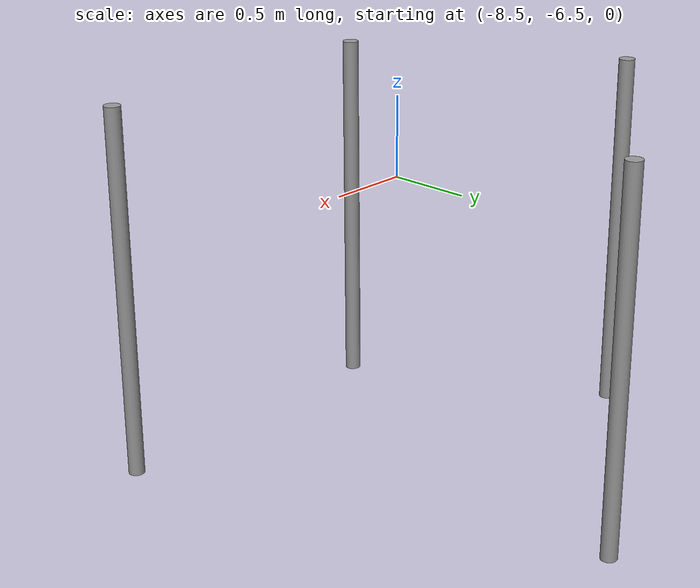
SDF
<sdf version="1.7">
 <model name="Complex1">
  <link name="link_0_clone_clone_21">
   <inertial>
    <mass>0.0136479</mass>
    <inertia>
     <ixx>0.00424334</ixx>
     <ixy>0</ixy>
     <ixz>0</ixz>
     <iyy>0.00424334</iyy>
     <iyz>0</iyz>
     <izz>1.17941e-05</izz>
    </inertia>
   </inertial>
   <pose>-8.58463 -4.98352 0 0 -0 0</pose>
   <visual name="visual">
    <geometry><cylinder><radius>0.0415732</radius><length>1.93023</length></cylinder></geometry>
    <material>
     <lighting>1</lighting>
     <script><uri>file://media/materials/scripts/gazebo.material</uri><name>Gazebo/Grey</name></script>
     <shader type="pixel"/>
    </material>
   </visual>
   <collision name="collision">
    <geometry><cylinder><radius>0.041573</radius><length>1.93023</length></cylinder></geometry>
    <surface>
     <friction>
      <ode><mu>1</mu><mu2>1</mu2><fdir1>0 0 0</fdir1><slip1>0</slip1><slip2>0</slip2></ode>
      <torsional>
       <coefficient>1</coefficient>
       <patch_radius>0</patch_radius>
       <surface_radius>0</surface_radius>
       <use_patch_radius>1</use_patch_radius>
       <ode><slip>0</slip></ode>
      </torsional>
     </friction>
     <bounce><restitution_coefficient>0</restitution_coefficient><threshold>1e+06</threshold></bounce>
     <contact>
      <collide_without_contact>0</collide_without_contact>
      <collide_without_contact_bitmask>1</collide_without_contact_bitmask>
      <collide_bitmask>1</collide_bitmask>
      <ode>
       <soft_cfm>0</soft_cfm>
       <soft_erp>0.2</soft_erp>
       <kp>1e+13</kp>
       <kd>1</kd>
       <max_vel>0.01</max_vel>
       <min_depth>0</min_depth>
      </ode>
      <bullet>
       <split_impulse>1</split_impulse>
       <split_impulse_penetration_threshold>-0.01</split_impulse_penetration_threshold>
       <soft_cfm>0</soft_cfm>
       <soft_erp>0.2</soft_erp>
       <kp>1e+13</kp>
       <kd>1</kd>
      </bullet>
     </contact>
    </surface>
   </collision>
  </link>
  <link name="link_0_clone_clone_22">
   <inertial>
    <mass>0.0136479</mass>
    <inertia>
     <ixx>0.00424334</ixx>
     <ixy>0</ixy>
     <ixz>0</ixz>
     <iyy>0.00424334</iyy>
     <iyz>0</iyz>
     <izz>1.17941e-05</izz>
    </inertia>
   </inertial>
   <pose>-6.23981 -6.23593 0 0 -0 0</pose>
   <visual name="visual">
    <geometry><cylinder><radius>0.0415732</radius><length>1.93023</length></cylinder></geometry>
    <material>
     <lighting>1</lighting>
     <script><uri>file://media/materials/scripts/gazebo.material</uri><name>Gazebo/Grey</name></script>
     <shader type="pixel"/>
    </material>
   </visual>
   <collision name="collision">
    <geometry><cylinder><radius>0.041573</radius><length>1.93023</length></cylinder></geometry>
    <surface>
     <friction>
      <ode><mu>1</mu><mu2>1</mu2><fdir1>0 0 0</fdir1><slip1>0</slip1><slip2>0</slip2></ode>
      <torsional>
       <coefficient>1</coefficient>
       <patch_radius>0</patch_radius>
       <surface_radius>0</surface_radius>
       <use_patch_radius>1</use_patch_radius>
       <ode><slip>0</slip></ode>
      </torsional>
     </friction>
     <bounce><restitution_coefficient>0</restitution_coefficient><threshold>1e+06</threshold></bounce>
     <contact>
      <collide_without_contact>0</collide_without_contact>
      <collide_without_contact_bitmask>1</collide_without_contact_bitmask>
      <collide_bitmask>1</collide_bitmask>
      <ode>
       <soft_cfm>0</soft_cfm>
       <soft_erp>0.2</soft_erp>
       <kp>1e+13</kp>
       <kd>1</kd>
       <max_vel>0.01</max_vel>
       <min_depth>0</min_depth>
      </ode>
      <bullet>
       <split_impulse>1</split_impulse>
       <split_impulse_penetration_threshold>-0.01</split_impulse_penetration_threshold>
       <soft_cfm>0</soft_cfm>
       <soft_erp>0.2</soft_erp>
       <kp>1e+13</kp>
       <kd>1</kd>
      </bullet>
     </contact>
    </surface>
   </collision>
  </link>
  <link name="link_0_clone_clone_24">
   <inertial>
    <mass>0.0136479</mass>
    <inertia>
     <ixx>0.00424334</ixx>
     <ixy>0</ixy>
     <ixz>0</ixz>
     <iyy>0.00424334</iyy>
     <iyz>0</iyz>
     <izz>1.17941e-05</izz>
    </inertia>
   </inertial>
   <pose>-7.8938 -6.29381 0 0 -0 0</pose>
   <visual name="visual">
    <geometry><cylinder><radius>0.0415732</radius><length>1.93023</length></cylinder></geometry>
    <material>
     <lighting>1</lighting>
     <script><uri>file://media/materials/scripts/gazebo.material</uri><name>Gazebo/Grey</name></script>
     <shader type="pixel"/>
    </material>
   </visual>
   <collision name="collision">
    <geometry><cylinder><radius>0.041573</radius><length>1.93023</length></cylinder></geometry>
    <surface>
     <friction>
      <ode><mu>1</mu><mu2>1</mu2><fdir1>0 0 0</fdir1><slip1>0</slip1><slip2>0</slip2></ode>
      <torsional>
       <coefficient>1</coefficient>
       <patch_radius>0</patch_radius>
       <surface_radius>0</surface_radius>
       <use_patch_radius>1</use_patch_radius>
       <ode><slip>0</slip></ode>
      </torsional>
     </friction>
     <bounce><restitution_coefficient>0</restitution_coefficient><threshold>1e+06</threshold></bounce>
     <contact>
      <collide_without_contact>0</collide_without_contact>
      <collide_without_contact_bitmask>1</collide_without_contact_bitmask>
      <collide_bitmask>1</collide_bitmask>
      <ode>
       <soft_cfm>0</soft_cfm>
       <soft_erp>0.2</soft_erp>
       <kp>1e+13</kp>
       <kd>1</kd>
       <max_vel>0.01</max_vel>
       <min_depth>0</min_depth>
      </ode>
      <bullet>
       <split_impulse>1</split_impulse>
       <split_impulse_penetration_threshold>-0.01</split_impulse_penetration_threshold>
       <soft_cfm>0</soft_cfm>
       <soft_erp>0.2</soft_erp>
       <kp>1e+13</kp>
       <kd>1</kd>
      </bullet>
     </contact>
    </surface>
   </collision>
  </link>
  <link name="link_0_clone_clone_25">
   <inertial>
    <mass>0.0136479</mass>
    <inertia>
     <ixx>0.00424334</ixx>
     <ixy>0</ixy>
     <ixz>0</ixz>
     <iyy>0.00424334</iyy>
     <iyz>0</iyz>
     <izz>1.17941e-05</izz>
    </inertia>
   </inertial>
   <pose>-7.20587 -4.00126 0 0 -0 0</pose>
   <visual name="visual">
    <geometry><cylinder><radius>0.0415732</radius><length>1.93023</length></cylinder></geometry>
    <material>
     <lighting>1</lighting>
     <script><uri>file://media/materials/scripts/gazebo.material</uri><name>Gazebo/Grey</name></script>
     <shader type="pixel"/>
    </material>
   </visual>
   <collision name="collision">
    <geometry><cylinder><radius>0.041573</radius><length>1.93023</length></cylinder></geometry>
    <surface>
     <friction>
      <ode><mu>1</mu><mu2>1</mu2><fdir1>0 0 0</fdir1><slip1>0</slip1><slip2>0</slip2></ode>
      <torsional>
       <coefficient>1</coefficient>
       <patch_radius>0</patch_radius>
       <surface_radius>0</surface_radius>
       <use_patch_radius>1</use_patch_radius>
       <ode><slip>0</slip></ode>
      </torsional>
     </friction>
     <bounce><restitution_coefficient>0</restitution_coefficient><threshold>1e+06</threshold></bounce>
     <contact>
      <collide_without_contact>0</collide_without_contact>
      <collide_without_contact_bitmask>1</collide_without_contact_bitmask>
      <collide_bitmask>1</collide_bitmask>
      <ode>
       <soft_cfm>0</soft_cfm>
       <soft_erp>0.2</soft_erp>
       <kp>1e+13</kp>
       <kd>1</kd>
       <max_vel>0.01</max_vel>
       <min_depth>0</min_depth>
      </ode>
      <bullet>
       <split_impulse>1</split_impulse>
       <split_impulse_penetration_threshold>-0.01</split_impulse_penetration_threshold>
       <soft_cfm>0</soft_cfm>
       <soft_erp>0.2</soft_erp>
       <kp>1e+13</kp>
       <kd>1</kd>
      </bullet>
     </contact>
    </surface>
   </collision>
  </link>
  <static>true</static>
 </model>
</sdf>
